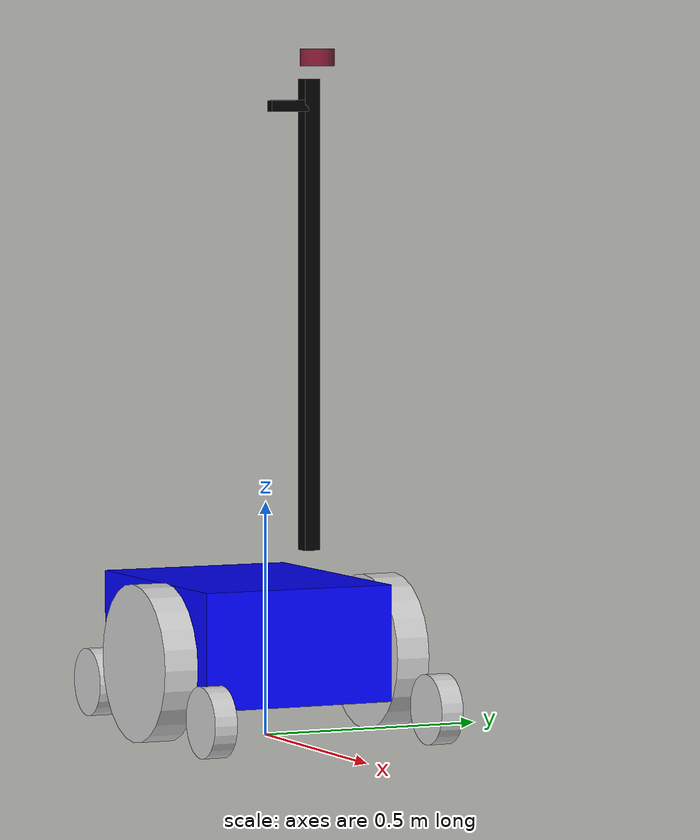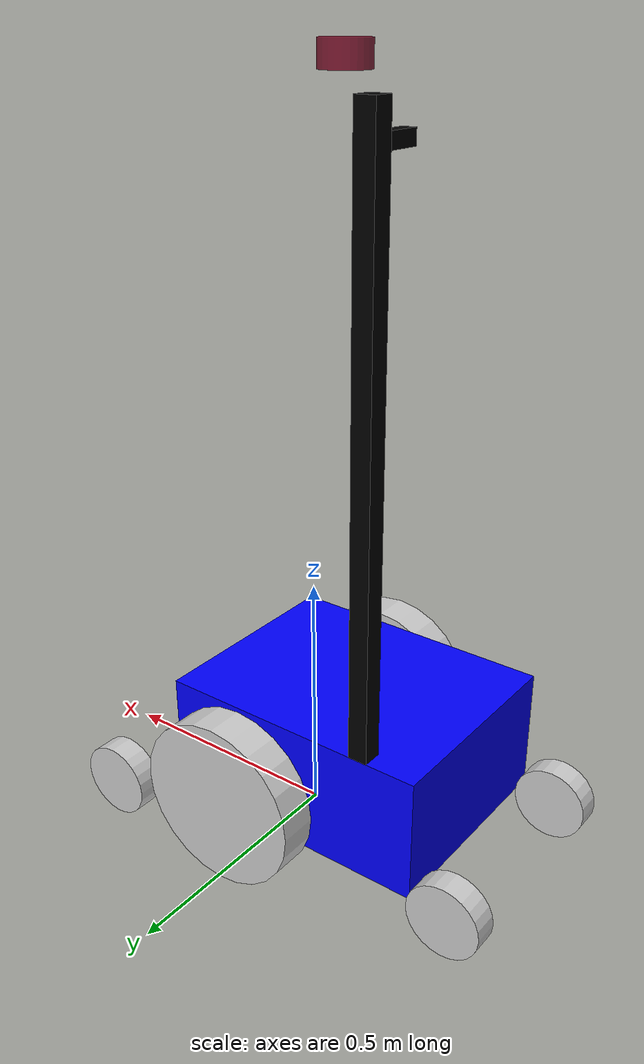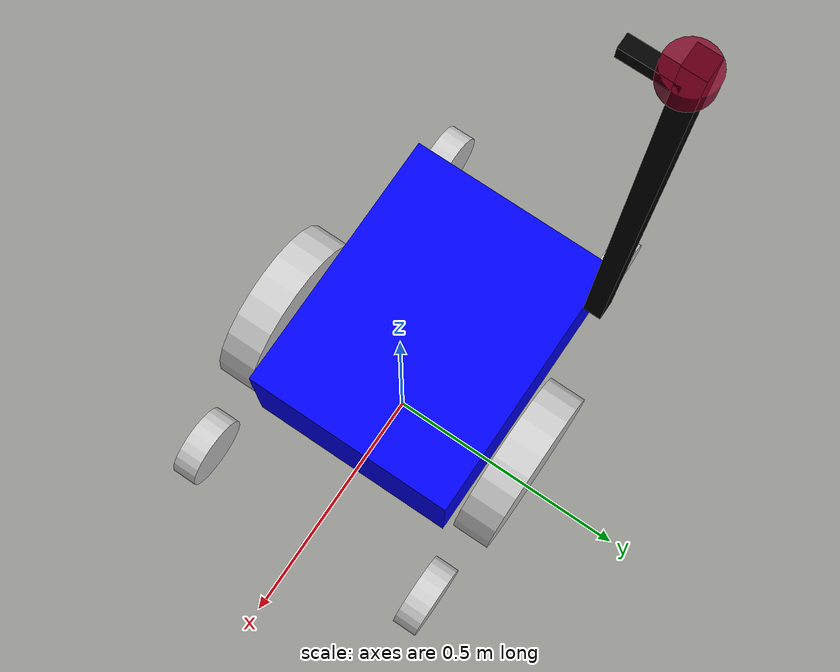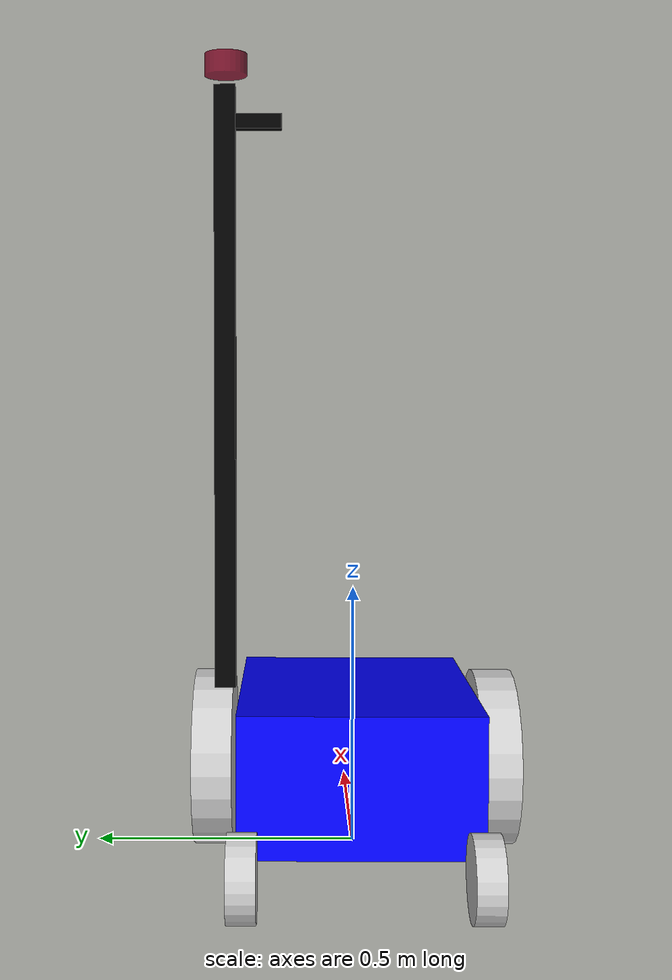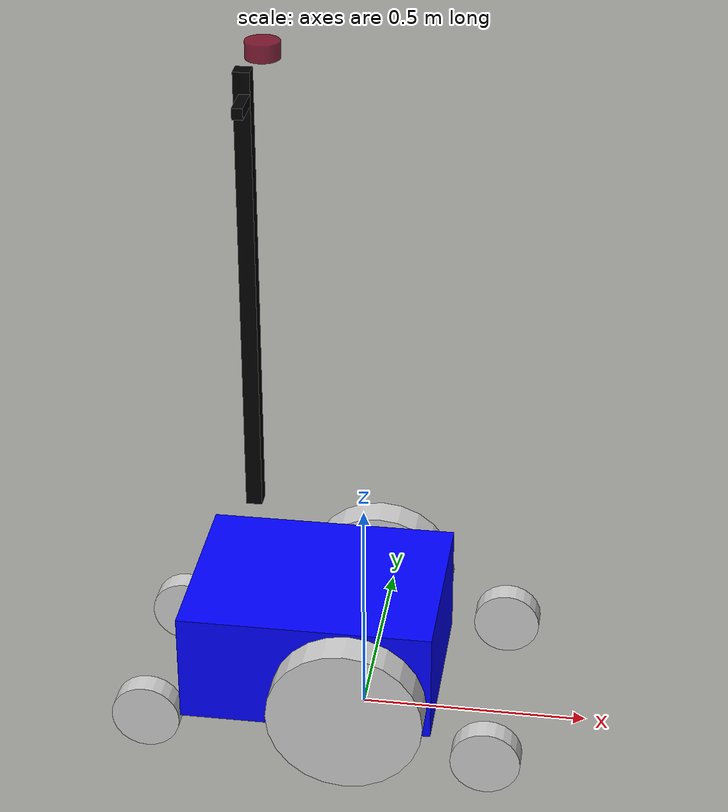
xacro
<?xml version="1.0"?>
<robot xmlns:xacro="http://www.ros.org/wiki/xacro"  name="robot">

    <xacro:arg name="sim_mode" default="false"/>
    <xacro:arg name="namespace" default="luggage_av"/>
    <xacro:arg name="mock_hardware" default="false" />

    <xacro:include filename="drivebase.xacro" />
    <xacro:include filename="ros2_control.xacro" />
    <xacro:include filename="lidar.xacro" />
    <xacro:include filename="camera.xacro" />

</robot>

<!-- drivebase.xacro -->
<robot xmlns:xacro="http://www.ros.org/wiki/xacro">

    <!-- Imports -->
    <xacro:include filename="params.xacro" />
    <xacro:include filename="wheels.xacro" />
    <xacro:include filename="inertial_macros.xacro" />

    <!-- Materials -->
    <material name="plastic_shell">
        <color rgba="0 0 1 1" />
    </material>

    <!-- Base link -->
    <link name="base_footprint"></link>
    <link name="base_link"></link>

    <joint name="footprint_joint" type="fixed">
        <parent link="base_footprint"/>
        <child link="base_link"/>
        <origin xyz="0 0 ${drive_wheel_radius}"/>
    </joint>

    <!-- Chassis -->
    <link name="chassis">
        <visual>
            <origin xyz="0 0 0"/>
            <geometry>
                <box size="${chassis_length} ${chassis_width} ${chassis_height}"/>
            </geometry>
            <material name="plastic_shell"/>
        </visual>
        <collision>
            <origin xyz="0 0 0"/>
            <geometry>
                <box size="${chassis_length} ${chassis_width} ${chassis_height}"/>
            </geometry>
        </collision>
        <xacro:inertial_box mass="50.0" x="${chassis_length}" y="${chassis_width}" z="${chassis_height}">
            <origin xyz="0 0 0" rpy="0 0 0" />
        </xacro:inertial_box>
    </link>

    <joint name="chassis_joint" type="fixed">
        <parent link="base_link"/>
        <child link="chassis"/>
        <origin xyz="${chassis_X_offset} 0 ${chassis_height/2 - drive_wheel_radius + chassis_Z_offset}"/>
    </joint>

    <!-- Drive Wheels -->
    <xacro:drive_wheel name="drive_wheel_L"></xacro:drive_wheel>

    <joint name="drive_wheel_L_joint" type="continuous">
        <parent link="base_link"/>
        <child link="drive_wheel_L"/>
        <origin xyz="0 ${drive_wheels_Y_spacing/2} 0" rpy="0 0 0" />
        <axis xyz="0 1 0"/>
    </joint>

    <xacro:drive_wheel name="drive_wheel_R"></xacro:drive_wheel>

    <joint name="drive_wheel_R_joint" type="continuous">
        <parent link="base_link"/>
        <child link="drive_wheel_R"/>
        <origin xyz="0 -${drive_wheels_Y_spacing/2} 0" rpy="${pi} 0 0" />
        <axis xyz="0 -1 0"/>
    </joint>

    <!-- Caster Wheels -->
    <xacro:caster_wheel name="caster_wheel_FL"></xacro:caster_wheel>

    <joint name="caster_wheel_FL_joint" type="fixed">
        <parent link="base_link"/>
        <child link="caster_wheel_FL"/>
        <origin xyz="${caster_wheels_F_X_offset} ${caster_wheels_F_Y_spacing/2} ${-drive_wheel_radius + caster_wheel_radius + caster_wheel_Z_offset + 0.001}" rpy="0 0 0" />
    </joint>

    <xacro:caster_wheel name="caster_wheel_FR"></xacro:caster_wheel>

    <joint name="caster_wheel_FR_joint" type="fixed">
        <parent link="base_link"/>
        <child link="caster_wheel_FR"/>
        <origin xyz="${caster_wheels_F_X_offset} -${caster_wheels_F_Y_spacing/2} ${-drive_wheel_radius + caster_wheel_radius + caster_wheel_Z_offset + 0.001}" rpy="0 0 0" />
    </joint>

    <xacro:caster_wheel name="caster_wheel_RL"></xacro:caster_wheel>

    <joint name="caster_wheel_RL_joint" type="fixed">
        <parent link="base_link"/>
        <child link="caster_wheel_RL"/>
        <origin xyz="${caster_wheels_R_X_offset} ${caster_wheels_R_Y_spacing/2} ${-drive_wheel_radius + caster_wheel_radius + caster_wheel_Z_offset + 0.001}" rpy="0 0 0" />
    </joint>

    <xacro:caster_wheel name="caster_wheel_RR"></xacro:caster_wheel>

    <joint name="caster_wheel_RR_joint" type="fixed">
        <parent link="base_link"/>
        <child link="caster_wheel_RR"/>
        <origin xyz="${caster_wheels_R_X_offset} -${caster_wheels_R_Y_spacing/2} ${-drive_wheel_radius + caster_wheel_radius + caster_wheel_Z_offset + 0.001}" rpy="0 0 0" />
    </joint>

</robot>

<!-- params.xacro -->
<robot xmlns:xacro="http://www.ros.org/wiki/xacro">

    <!-- WHEELS -->
    <xacro:property name="drive_wheel_radius" value="0.1685" />
    <xacro:property name="drive_wheel_thickness" value="0.075" />
    <xacro:property name="caster_wheel_radius" value="0.075" />
    <xacro:property name="caster_wheel_thickness" value="0.05" />
    <xacro:property name="caster_wheel_X_offset" value="0.05" />
    <xacro:property name="caster_wheel_Z_offset" value="0.09" />

    <!-- DRIVEBASE -->
    <xacro:property name="chassis_width" value="0.43" />
    <xacro:property name="chassis_length" value="0.55" />
    <xacro:property name="chassis_height" value="0.25" />
    <xacro:property name="chassis_X_offset" value="-0.1" />
    <xacro:property name="chassis_Z_offset" value="0.08" />
    <xacro:property name="drive_wheels_Y_spacing" value="0.54" />
    <xacro:property name="caster_wheels_F_Y_spacing" value="0.52" />
    <xacro:property name="caster_wheels_R_Y_spacing" value="0.405" />
    <xacro:property name="caster_wheels_F_X_offset" value="0.35" />
    <xacro:property name="caster_wheels_R_X_offset" value="-0.4" />

    <!--LIDAR-->
    <xacro:property name="lidar_pole_length" value="0.0365" />
    <xacro:property name="lidar_pole_width" value="0.0365" />
    <xacro:property name="lidar_pole_height" value="1.041" />

    <xacro:property name="lidar_pole_x_offset" value="-0.267" />
    <xacro:property name="lidar_pole_y_offset" value="0.254" />
    <xacro:property name="lidar_pole_z_offset" value="${0.365-drive_wheel_radius}" />

    <xacro:property name="lidar_sensor_height" value="0.04" />
    <xacro:property name="lidar_sensor_radius" value="0.0375" />

    <xacro:property name="lidar_sensor_x_offset" value="0.0254" />
    <xacro:property name="lidar_sensor_y_offset" value="${-lidar_pole_width/2}" />
    <xacro:property name="lidar_sensor_z_offset" value="1.067" />

    <!-- CAMERA -->
    <xacro:property name="camera_length" value="0.09" />
    <xacro:property name="camera_width" value="0.024" />
    <xacro:property name="camera_height" value="0.025" />

    <xacro:property name="camera_x_offset" value="0" />
    <xacro:property name="camera_y_offset" value="-0.071" />
    <xacro:property name="camera_z_offset" value="${lidar_pole_height-0.06}" />
</robot>

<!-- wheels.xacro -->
<robot xmlns:xacro="http://www.ros.org/wiki/xacro">

    <!-- Imports -->
    <xacro:include filename="params.xacro" />

    <!-- Materials -->
    <material name="wheel_rubber">
        <color rgba="0.8 0.8 0.8 1" />
    </material>

    <!-- Macros -->
    <!-- Drive Wheels -->
    <xacro:macro name="drive_wheel" params="name">
        <link name="${name}">
            <visual>
                <origin xyz="0 0 0" rpy="-${pi/2} 0 0" />
                <geometry>
                    <cylinder radius="${drive_wheel_radius}" length="${drive_wheel_thickness}" />
                </geometry>
                <material name="wheel_rubber" />
            </visual>
            <collision>
                <origin xyz="0 0 0" rpy="-${pi/2} 0 0" />
                <geometry>
                    <sphere radius="${drive_wheel_radius}" />
                </geometry>
            </collision>
            <xacro:inertial_cylinder mass="2.0" radius="${drive_wheel_radius}" length="${drive_wheel_thickness}">
                <origin xyz="0 0 0" rpy="-${pi/2} 0 0" />
            </xacro:inertial_cylinder>
        </link>
    </xacro:macro>

    <!-- Caster Wheels -->
    <xacro:macro name="caster_wheel" params="name">
        <link name="${name}">
            <visual>
                <origin xyz="-${caster_wheel_X_offset} 0 -${caster_wheel_Z_offset}" rpy="-${pi/2} 0 0" />
                <geometry>
                    <cylinder radius="${caster_wheel_radius}" length="${caster_wheel_thickness}"/>
                </geometry>
                <material name="wheel_rubber" />
            </visual>
            <collision>
                <origin xyz="-${caster_wheel_X_offset} 0 -${caster_wheel_Z_offset}" rpy="-${pi/2} 0 0" />
                <geometry>
                    <sphere radius="${caster_wheel_radius}"/>
                </geometry>
            </collision>
            <xacro:inertial_cylinder mass="1.0" radius="${caster_wheel_radius}" length="${caster_wheel_thickness}">
                <origin xyz="-${caster_wheel_X_offset} 0 -${caster_wheel_Z_offset}" rpy="-${pi/2} 0 0" />
            </xacro:inertial_cylinder>
        </link>
    </xacro:macro>
</robot>

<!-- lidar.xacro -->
<robot xmlns:xacro="http://www.ros.org/wiki/xacro" >

    <xacro:include filename="params.xacro" />

    <material name="lidar_black">
        <color rgba="0 0 0 1"/>
    </material>

    <material name="lidar_burgundy">
        <color rgba="0.5 0 0.125 0.8"/>
    </material>

    <joint name="lidar_mount_joint" type="fixed">
        <parent link="base_link"/>
        <child link="lidar_mount_link"/>
        <origin xyz = "${lidar_pole_x_offset} ${lidar_pole_y_offset} ${lidar_pole_z_offset}"/>
    </joint>

    <link name="lidar_mount_link">
        <visual>
            <origin xyz="${-lidar_pole_length/2} ${-lidar_pole_width/2} ${lidar_pole_height/2}" rpy="0 0 0"/>
            <geometry>
                <box size="${lidar_pole_length} ${lidar_pole_width} ${lidar_pole_height}"/>
            </geometry>
            <material name="lidar_black"/>
        </visual>
        <collision>
            <origin xyz="${-lidar_pole_length/2} ${-lidar_pole_width/2} ${lidar_pole_height/2}" rpy="0 0 0"/>
            <geometry>
                <box size="${lidar_pole_length} ${lidar_pole_width} ${lidar_pole_height}"/>
            </geometry>
            <material name="lidar_black"/>
        </collision>
        <xacro:inertial_box mass="0.1" x="${lidar_pole_length}" y="${lidar_pole_width}" z="${lidar_pole_height}">
            <origin xyz="${-lidar_pole_length/2} ${-lidar_pole_width/2} ${lidar_pole_height/2}" rpy="0 0 0"/>
        </xacro:inertial_box>
    </link>

    <joint name="laser_joint" type="fixed">
        <parent link="lidar_mount_link"/>
        <child link="base_laser"/>
        <origin xyz="${lidar_sensor_x_offset} ${lidar_sensor_y_offset} ${lidar_sensor_z_offset}" rpy="0 0 ${pi}"/> <!--half the height of the mount + half the height of the lidar itself -->
    </joint>

    <link name="base_laser">
        <visual>
            <origin xyz="0 0 ${lidar_sensor_height/2}" rpy="0 0 0"/>
            <geometry>
                <cylinder radius="${lidar_sensor_radius}" length="${lidar_sensor_radius}"/>
            </geometry>
            <material name="lidar_burgundy"/>
        </visual>
        <collision>
            <origin xyz="0 0 ${lidar_sensor_height/2}" rpy="0 0 0"/>
            <geometry>
                <cylinder radius="${lidar_sensor_radius}" length="${lidar_sensor_radius}"/>
            </geometry>
        </collision>
        <xacro:inertial_cylinder mass="0.1" radius="${lidar_sensor_radius}" length="${lidar_sensor_radius}" >
            <origin xyz="0 0 ${lidar_sensor_height/2}" rpy="0 0 0"/>
        </xacro:inertial_cylinder>
    </link>

    <gazebo reference="base_laser">
        <material>Gazebo/blue</material>

        <sensor name="lidar" type="gpu_lidar">
            <pose> 0 0 0 0 0 0 </pose>
            <visualize>false</visualize>
            <update_rate>10</update_rate>
            <lidar>
                <scan>
                    <horizontal>
                        <samples>360</samples>
                        <min_angle>-3.14</min_angle>
                        <max_angle>3.14</max_angle>
                    </horizontal>
                </scan>
                <range>
                    <min>0.3</min>
                    <max>12</max>
                </range>
            </lidar>
            <topic>scan</topic>
            <gz_frame_id>$(arg namespace)/base_laser</gz_frame_id>
        </sensor>
    </gazebo>

</robot>

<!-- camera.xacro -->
<robot xmlns:xacro="http://www.ros.org/wiki/xacro" >

    <xacro:include filename="params.xacro" />

    <material name="camera_black">
        <color rgba="0 0 0 1"/>
    </material>

    <joint name="camera_joint" type="fixed">
        <parent link="lidar_mount_link"/>
        <child link="base_camera"/>
        <origin xyz="${camera_x_offset} ${camera_y_offset} ${camera_z_offset}" rpy="${-pi/2} 0 ${-pi/2}"/> <!--half the height of the mount + half the height of the lidar itself -->
    </joint>

    <link name="base_camera">
        <visual>
            <origin xyz="0 0 ${-camera_width/2}" rpy="0 0 0"/>
            <geometry>
                <box size="${camera_length} ${camera_height} ${camera_width}" />
            </geometry>
            <material name="camera_black"/>
        </visual>
        <collision>
            <origin xyz="0 0 ${-camera_width/2}" rpy="0 0 0"/>
            <geometry>
                <box size="${camera_length} ${camera_height} ${camera_width}" />
            </geometry>
        </collision>
        <xacro:inertial_box mass="0.1" x="${camera_length}" y="${camera_height}" z="${camera_width}" >
            <origin xyz="0 0 ${-camera_width/2}" rpy="0 0 0"/>
        </xacro:inertial_box>
    </link>

    <gazebo reference="base_camera">
        <material>Gazebo/Black</material>

        <sensor name="camera" type="camera">
            <pose> 0 0 0 ${pi/2} ${-pi/2} 0</pose>
            <always_on>true</always_on>
            <visualize>true</visualize>
            <update_rate>30</update_rate>
            <camera name="logitech_c920">
                <camera_info_topic>camera_info</camera_info_topic>
                <horizontal_fov>1.229061</horizontal_fov>
                <image>
                    <format>R8G8B8</format>
                    <width>800</width>
                    <height>600 </height>
                </image>
                <clip>
                    <near>0.05</near>
                    <far>8.0</far>
                </clip>
            </camera>
            <topic>/$(arg namespace)/image_raw</topic>
            <gz_frame_id>$(arg namespace)/base_camera</gz_frame_id>
        </sensor>
    </gazebo>

</robot>
